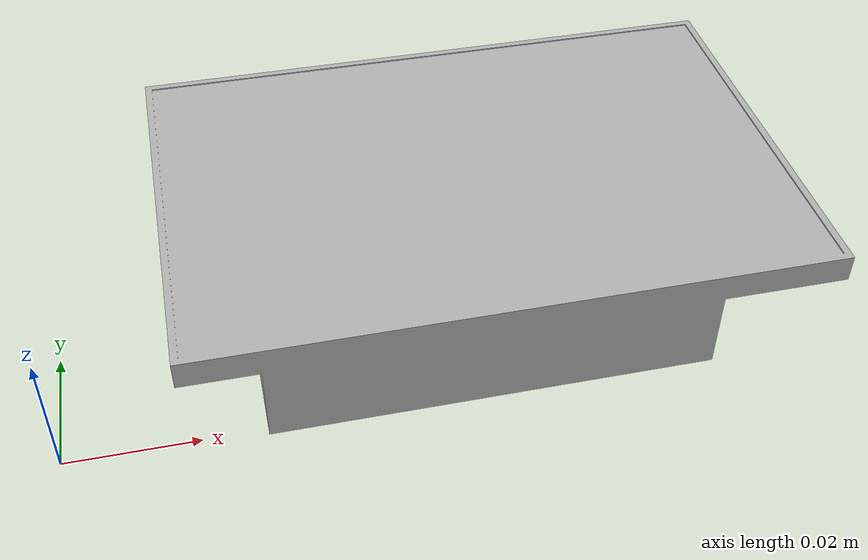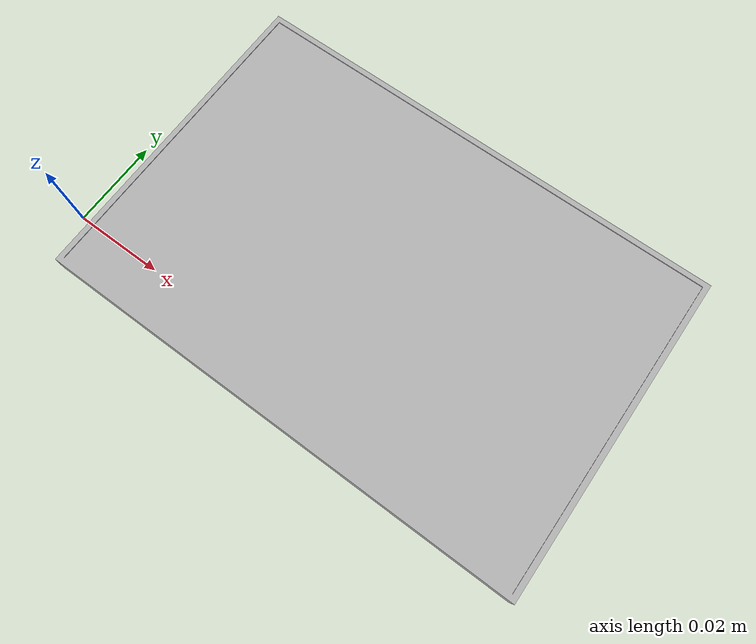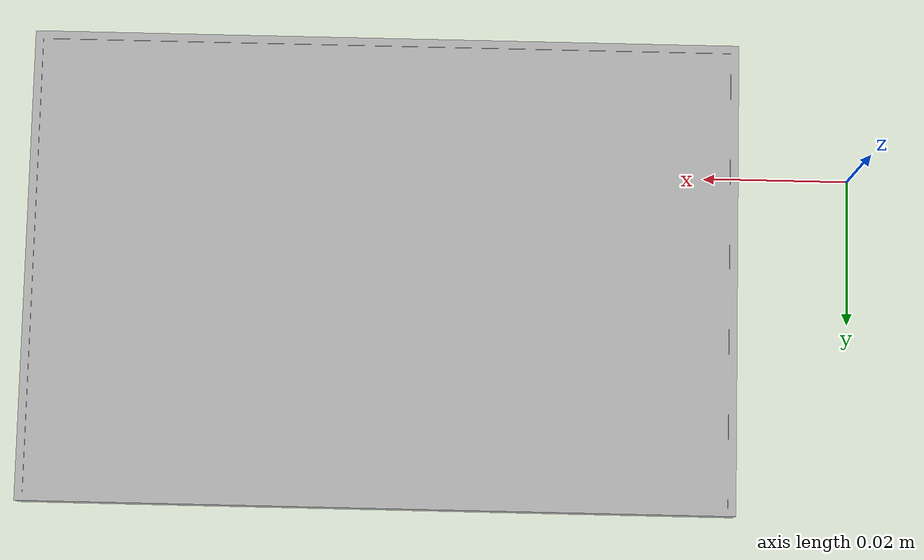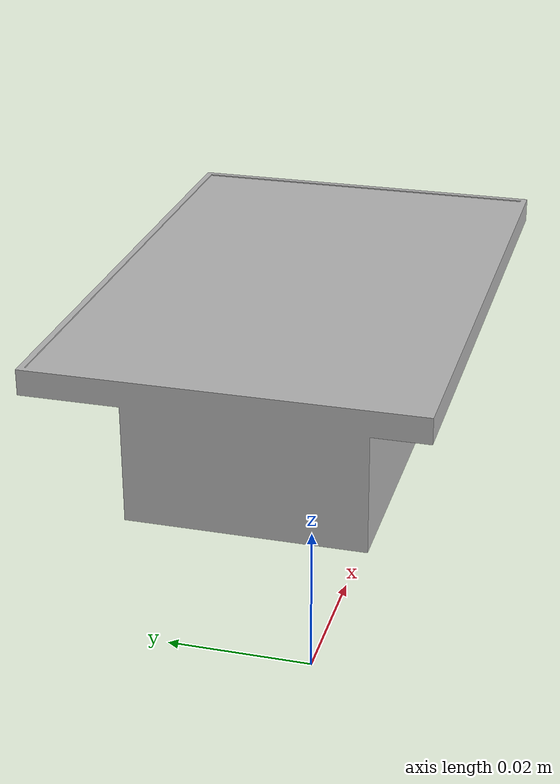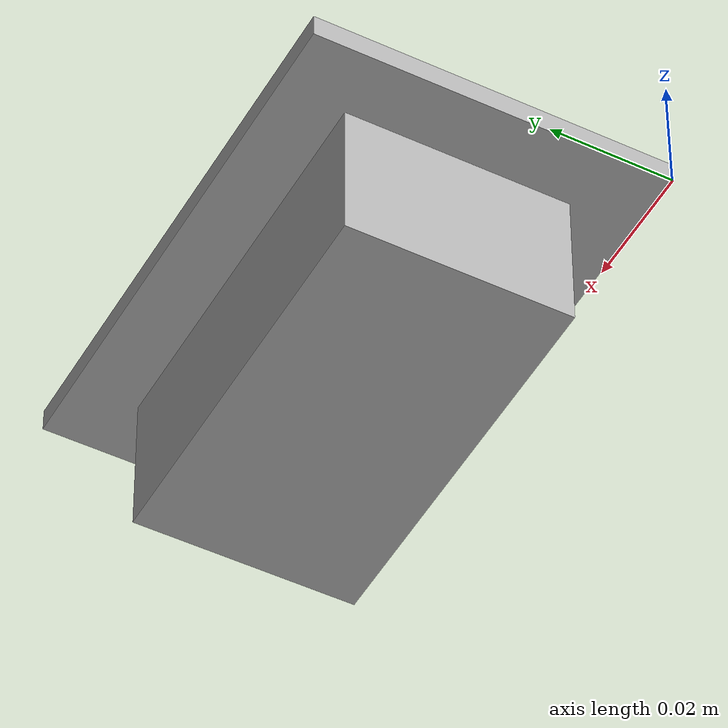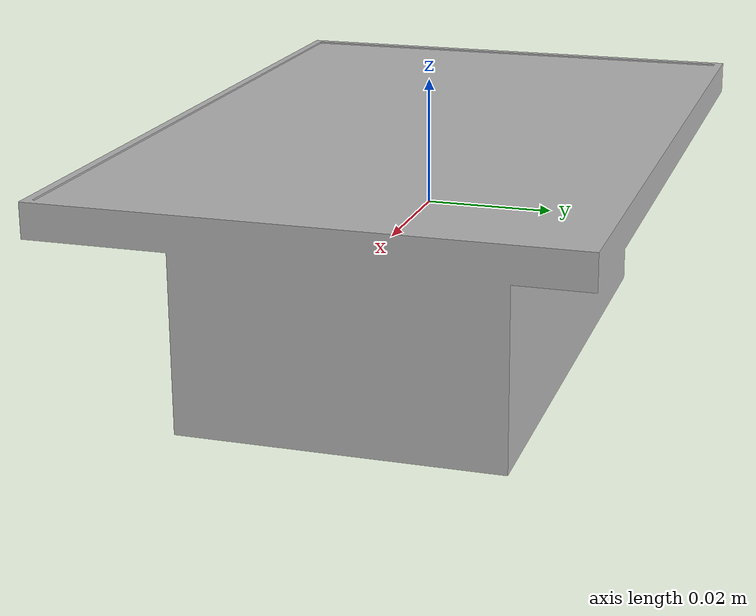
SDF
<?xml version="1.0" ?>
<sdf version="1.5">
  <model name="coffee_table">
    <static>true</static>
    <link name="link">
      <collision name="surface">
        <pose>0 0 0.755 0 0 0</pose>
        <geometry>
          <box>
            <size>0.913 0.913 0.04</size>
          </box>
        </geometry>
      </collision>

      <collision name="column">
        <pose>0 0 0.37 0 0 0</pose>
        <geometry>
          <box>
            <size>0.042 0.042 0.74</size>
          </box>
        </geometry>
      </collision>

      <collision name="base">
        <pose>0 0 0.02 0 0 0</pose>
        <geometry>
          <box>
            <size>0.56 0.56 0.04</size>
          </box>
        </geometry>
      </collision>

      <visual name="visual">
        <geometry>
          <mesh>
            <uri>model://coffee_table/meshes/coffee_table.stl</uri>
          </mesh>
        </geometry>
      </visual>
    </link>
  </model>
</sdf>
